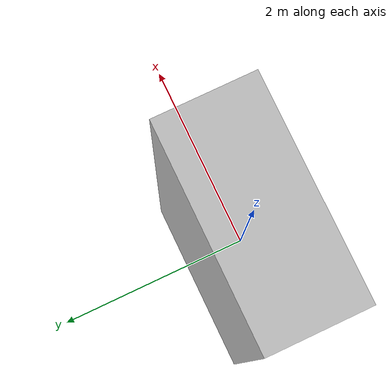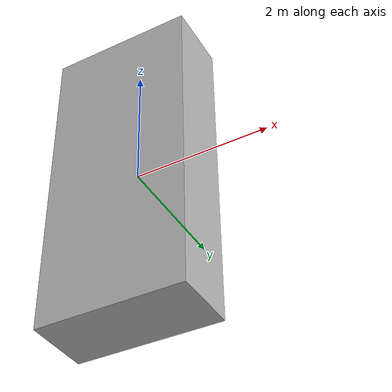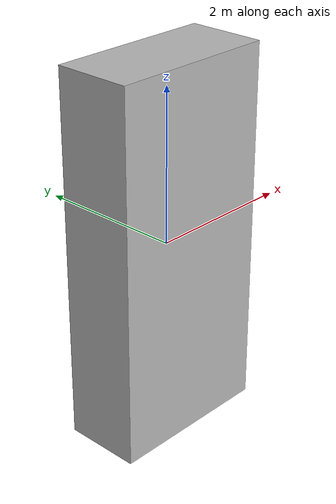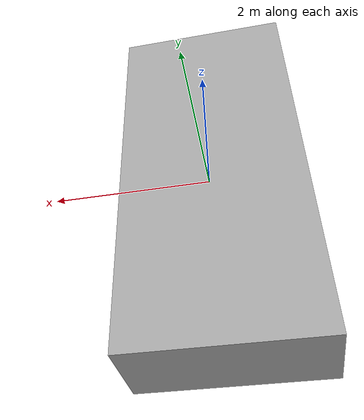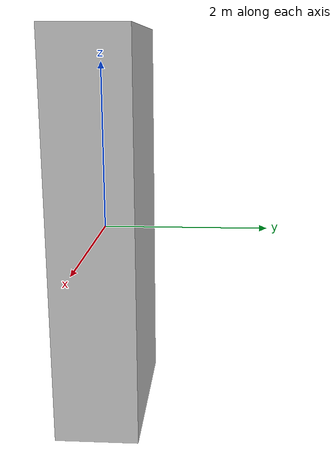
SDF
<?xml version="1.0"?>
<sdf version="1.6">
  <model name="tomate">
    <static>true</static>
    <link name="tomate_link">
      <visual name="visual_tomate">
        <cast_shadows>true</cast_shadows>
        <geometry>
          <mesh>
            <uri>model://tomate/meshes/base_link.STL</uri>
          </mesh>
        </geometry>
      </visual>
      <collision name="collision_tomate">
        <geometry>
          <mesh>
            <uri>model://tomate/meshes/base_link.STL</uri>
          </mesh>
        </geometry>
      </collision>
    </link>
  </model>
</sdf>
